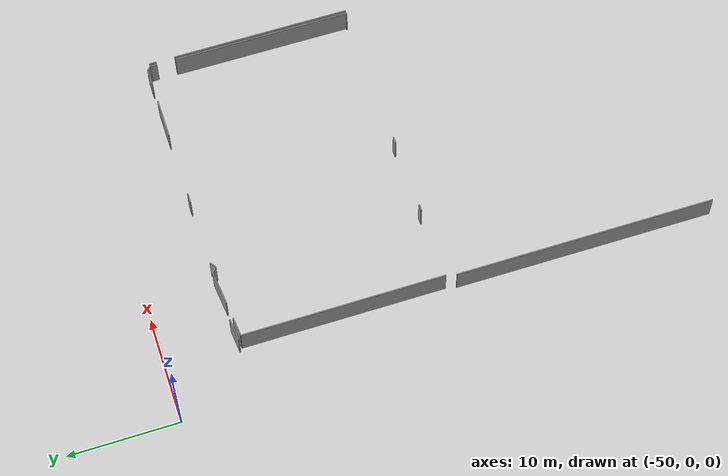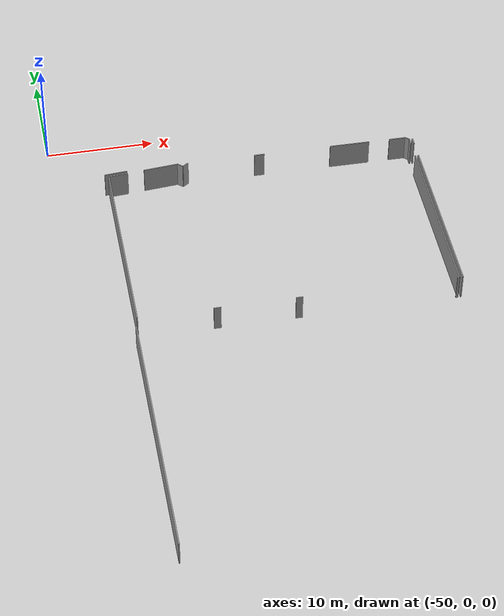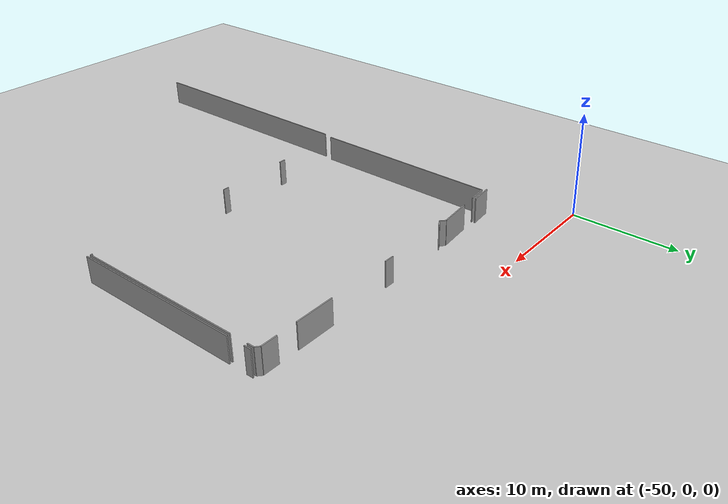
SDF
<sdf version="1.6">
 <world name="default">
  <model name="ground_plane">
   <static>1</static>
   <link name="link">
    <collision name="collision">
     <geometry><plane><normal>0 0 1</normal><size>100 100</size></plane></geometry>
     <surface><friction><ode><mu>100</mu><mu2>50</mu2></ode></friction></surface>
    </collision>
    <visual name="visual">
     <cast_shadows>0</cast_shadows>
     <geometry><plane><normal>0 0 1</normal><size>100 100</size></plane></geometry>
     <material>
      <script><uri>file://media/materials/scripts/gazebo.material</uri><name>Gazebo/Grey</name></script>
     </material>
    </visual>
   </link>
  </model>
  <model name="0510032218_A-40">
   <static>1</static>
   <link name="Wall_285">
    <collision name="Wall_285_Collision">
     <geometry><box><size>2.10541434801 0.1 2.5</size></box></geometry>
     <pose>1.052707174 0 1.25 0 0 0</pose>
    </collision>
    <visual name="Wall_285_Visual">
     <pose>1.052707174 0 1.25 0 0 0</pose>
     <geometry><box><size>2.10541434801 0.1 2.5</size></box></geometry>
     <material>
      <script><uri>file://media/materials/scripts/gazebo.material</uri><name>Gazebo/Grey</name></script>
      <ambient>1 1 1 1</ambient>
     </material>
    </visual>
    <pose>31.5992384095 -56.0613080316 0 0 0 -3.0523682844</pose>
   </link>
   <link name="Wall_311">
    <collision name="Wall_311_Collision">
     <geometry><box><size>16.3184717418 0.1 2.5</size></box></geometry>
     <pose>8.15923587091 0 1.25 0 0 0</pose>
    </collision>
    <visual name="Wall_311_Visual">
     <pose>8.15923587091 0 1.25 0 0 0</pose>
     <geometry><box><size>16.3184717418 0.1 2.5</size></box></geometry>
     <material>
      <script><uri>file://media/materials/scripts/gazebo.material</uri><name>Gazebo/Grey</name></script>
      <ambient>1 1 1 1</ambient>
     </material>
    </visual>
    <pose>58.5727414083 -74.9355504078 0 0 0 1.57079632679</pose>
   </link>
   <link name="Wall_312">
    <collision name="Wall_312_Collision">
     <geometry><box><size>0.64303620728 0.1 2.5</size></box></geometry>
     <pose>0.32151810364 0 1.25 0 0 0</pose>
    </collision>
    <visual name="Wall_312_Visual">
     <pose>0.32151810364 0 1.25 0 0 0</pose>
     <geometry><box><size>0.64303620728 0.1 2.5</size></box></geometry>
     <material>
      <script><uri>file://media/materials/scripts/gazebo.material</uri><name>Gazebo/Grey</name></script>
      <ambient>1 1 1 1</ambient>
     </material>
    </visual>
    <pose>58.5727414083 -56.8929648082 0 0 0 1.57079632679</pose>
   </link>
   <link name="Wall_321">
    <collision name="Wall_321_Collision">
     <geometry><box><size>0.177704439438 0.1 2.5</size></box></geometry>
     <pose>0.0888522197188 0 1.25 0 0 0</pose>
    </collision>
    <visual name="Wall_321_Visual">
     <pose>0.0888522197188 0 1.25 0 0 0</pose>
     <geometry><box><size>0.177704439438 0.1 2.5</size></box></geometry>
     <material>
      <script><uri>file://media/materials/scripts/gazebo.material</uri><name>Gazebo/Grey</name></script>
      <ambient>1 1 1 1</ambient>
     </material>
    </visual>
    <pose>58.2764827214 -74.902421223 0 0 0 3.14159265359</pose>
   </link>
   <link name="Wall_322">
    <collision name="Wall_322_Collision">
     <geometry><box><size>0.602418049694 0.1 2.5</size></box></geometry>
     <pose>0.301209024847 0 1.25 0 0 0</pose>
    </collision>
    <visual name="Wall_322_Visual">
     <pose>0.301209024847 0 1.25 0 0 0</pose>
     <geometry><box><size>0.602418049694 0.1 2.5</size></box></geometry>
     <material>
      <script><uri>file://media/materials/scripts/gazebo.material</uri><name>Gazebo/Grey</name></script>
      <ambient>1 1 1 1</ambient>
     </material>
    </visual>
    <pose>44.332396154 -74.902421223 0 0 0 3.14159265359</pose>
   </link>
   <link name="Wall_323">
    <collision name="Wall_323_Collision">
     <geometry><box><size>0.638720528036 0.1 2.5</size></box></geometry>
     <pose>0.319360264018 0 1.25 0 0 0</pose>
    </collision>
    <visual name="Wall_323_Visual">
     <pose>0.319360264018 0 1.25 0 0 0</pose>
     <geometry><box><size>0.638720528036 0.1 2.5</size></box></geometry>
     <material>
      <script><uri>file://media/materials/scripts/gazebo.material</uri><name>Gazebo/Grey</name></script>
      <ambient>1 1 1 1</ambient>
     </material>
    </visual>
    <pose>37.1549138451 -74.902421223 0 0 0 3.14159265359</pose>
   </link>
   <link name="Wall_324">
    <collision name="Wall_324_Collision">
     <geometry><box><size>18.3886015295 0.1 2.5</size></box></geometry>
     <pose>9.19430076476 0 1.25 0 0 0</pose>
    </collision>
    <visual name="Wall_324_Visual">
     <pose>9.19430076476 0 1.25 0 0 0</pose>
     <geometry><box><size>18.3886015295 0.1 2.5</size></box></geometry>
     <material>
      <script><uri>file://media/materials/scripts/gazebo.material</uri><name>Gazebo/Grey</name></script>
      <ambient>1 1 1 1</ambient>
     </material>
    </visual>
    <pose>29.8611620601 -74.902421223 0 0 0 1.57079632679</pose>
   </link>
   <link name="Wall_325">
    <collision name="Wall_325_Collision">
     <geometry><box><size>1.77700366695 0.1 2.5</size></box></geometry>
     <pose>0.888501833477 0 1.25 0 0 0</pose>
    </collision>
    <visual name="Wall_325_Visual">
     <pose>0.888501833477 0 1.25 0 0 0</pose>
     <geometry><box><size>1.77700366695 0.1 2.5</size></box></geometry>
     <material>
      <script><uri>file://media/materials/scripts/gazebo.material</uri><name>Gazebo/Grey</name></script>
      <ambient>1 1 1 1</ambient>
     </material>
    </visual>
    <pose>29.8611620601 -56.5138196935 0 0 0 0.0808040391195</pose>
   </link>
   <link name="Wall_326">
    <collision name="Wall_326_Collision">
     <geometry><box><size>3.18879751427 0.1 2.5</size></box></geometry>
     <pose>1.59439875713 0 1.25 0 0 0</pose>
    </collision>
    <visual name="Wall_326_Visual">
     <pose>1.59439875713 0 1.25 0 0 0</pose>
     <geometry><box><size>3.18879751427 0.1 2.5</size></box></geometry>
     <material>
      <script><uri>file://media/materials/scripts/gazebo.material</uri><name>Gazebo/Grey</name></script>
      <ambient>1 1 1 1</ambient>
     </material>
    </visual>
    <pose>33.1555485038 -56.2159108939 0 0 0 0.0978387631389</pose>
   </link>
   <link name="Wall_327">
    <collision name="Wall_327_Collision">
     <geometry><box><size>0.598613596376 0.1 2.5</size></box></geometry>
     <pose>0.299306798188 0 1.25 0 0 0</pose>
    </collision>
    <visual name="Wall_327_Visual">
     <pose>0.299306798188 0 1.25 0 0 0</pose>
     <geometry><box><size>0.598613596376 0.1 2.5</size></box></geometry>
     <material>
      <script><uri>file://media/materials/scripts/gazebo.material</uri><name>Gazebo/Grey</name></script>
      <ambient>1 1 1 1</ambient>
     </material>
    </visual>
    <pose>36.3290959287 -55.9044203979 0 0 0 -0.717274108433</pose>
   </link>
   <link name="Wall_328">
    <collision name="Wall_328_Collision">
     <geometry><box><size>0.636257118337 0.1 2.5</size></box></geometry>
     <pose>0.318128559168 0 1.25 0 0 0</pose>
    </collision>
    <visual name="Wall_328_Visual">
     <pose>0.318128559168 0 1.25 0 0 0</pose>
     <geometry><box><size>0.636257118337 0.1 2.5</size></box></geometry>
     <material>
      <script><uri>file://media/materials/scripts/gazebo.material</uri><name>Gazebo/Grey</name></script>
      <ambient>1 1 1 1</ambient>
     </material>
    </visual>
    <pose>36.7802113414 -56.2979087995 0 0 0 0.592207746691</pose>
   </link>
   <link name="Wall_329">
    <collision name="Wall_329_Collision">
     <geometry><box><size>0.940691143338 0.1 2.5</size></box></geometry>
     <pose>0.470345571669 0 1.25 0 0 0</pose>
    </collision>
    <visual name="Wall_329_Visual">
     <pose>0.470345571669 0 1.25 0 0 0</pose>
     <geometry><box><size>0.940691143338 0.1 2.5</size></box></geometry>
     <material>
      <script><uri>file://media/materials/scripts/gazebo.material</uri><name>Gazebo/Grey</name></script>
      <ambient>1 1 1 1</ambient>
     </material>
    </visual>
    <pose>43.5658553613 -55.9427537842 0 0 0 0.0</pose>
   </link>
   <link name="Wall_330">
    <collision name="Wall_330_Collision">
     <geometry><box><size>3.72392346016 0.1 2.5</size></box></geometry>
     <pose>1.86196173008 0 1.25 0 0 0</pose>
    </collision>
    <visual name="Wall_330_Visual">
     <pose>1.86196173008 0 1.25 0 0 0</pose>
     <geometry><box><size>3.72392346016 0.1 2.5</size></box></geometry>
     <material>
      <script><uri>file://media/materials/scripts/gazebo.material</uri><name>Gazebo/Grey</name></script>
      <ambient>1 1 1 1</ambient>
     </material>
    </visual>
    <pose>50.754761527 -55.9427537842 0 0 0 0.0</pose>
   </link>
   <link name="Wall_331">
    <collision name="Wall_331_Collision">
     <geometry><box><size>1.52762352045 0.1 2.5</size></box></geometry>
     <pose>0.763811760226 0 1.25 0 0 0</pose>
    </collision>
    <visual name="Wall_331_Visual">
     <pose>0.763811760226 0 1.25 0 0 0</pose>
     <geometry><box><size>1.52762352045 0.1 2.5</size></box></geometry>
     <material>
      <script><uri>file://media/materials/scripts/gazebo.material</uri><name>Gazebo/Grey</name></script>
      <ambient>1 1 1 1</ambient>
     </material>
    </visual>
    <pose>56.4129978104 -55.9427537842 0 0 0 0.0</pose>
   </link>
   <link name="Wall_332">
    <collision name="Wall_332_Collision">
     <geometry><box><size>0.464497775567 0.1 2.5</size></box></geometry>
     <pose>0.232248887784 0 1.25 0 0 0</pose>
    </collision>
    <visual name="Wall_332_Visual">
     <pose>0.232248887784 0 1.25 0 0 0</pose>
     <geometry><box><size>0.464497775567 0.1 2.5</size></box></geometry>
     <material>
      <script><uri>file://media/materials/scripts/gazebo.material</uri><name>Gazebo/Grey</name></script>
      <ambient>1 1 1 1</ambient>
     </material>
    </visual>
    <pose>57.9406213309 -55.9427537842 0 0 0 -0.722557488785</pose>
   </link>
   <link name="Wall_333">
    <collision name="Wall_333_Collision">
     <geometry><box><size>0.64303620728 0.1 2.5</size></box></geometry>
     <pose>0.32151810364 0 1.25 0 0 0</pose>
    </collision>
    <visual name="Wall_333_Visual">
     <pose>0.32151810364 0 1.25 0 0 0</pose>
     <geometry><box><size>0.64303620728 0.1 2.5</size></box></geometry>
     <material>
      <script><uri>file://media/materials/scripts/gazebo.material</uri><name>Gazebo/Grey</name></script>
      <ambient>1 1 1 1</ambient>
     </material>
    </visual>
    <pose>58.2890489639 -56.2499286009 0 0 0 -1.57079632679</pose>
   </link>
   <link name="Wall_334">
    <collision name="Wall_334_Collision">
     <geometry><box><size>16.2803970688 0.1 2.5</size></box></geometry>
     <pose>8.1401985344 0 1.25 0 0 0</pose>
    </collision>
    <visual name="Wall_334_Visual">
     <pose>8.1401985344 0 1.25 0 0 0</pose>
     <geometry><box><size>16.2803970688 0.1 2.5</size></box></geometry>
     <material>
      <script><uri>file://media/materials/scripts/gazebo.material</uri><name>Gazebo/Grey</name></script>
      <ambient>1 1 1 1</ambient>
     </material>
    </visual>
    <pose>58.2890489639 -58.6220290039 0 0 0 -1.57156819026</pose>
   </link>
   <link name="Wall_367">
    <collision name="Wall_367_Collision">
     <geometry><box><size>23.6810462574 0.1 2.5</size></box></geometry>
     <pose>11.8405231287 0 1.25 0 0 0</pose>
    </collision>
    <visual name="Wall_367_Visual">
     <pose>11.8405231287 0 1.25 0 0 0</pose>
     <geometry><box><size>23.6810462574 0.1 2.5</size></box></geometry>
     <material>
      <script><uri>file://media/materials/scripts/gazebo.material</uri><name>Gazebo/Grey</name></script>
      <ambient>1 1 1 1</ambient>
     </material>
    </visual>
    <pose>29.6375083299 -75.8207723797 0 0 0 -1.57227034283</pose>
   </link>
   <pose>-74.8 49.7517929109 0 0 0 0</pose>
  </model>
 </world>
</sdf>
